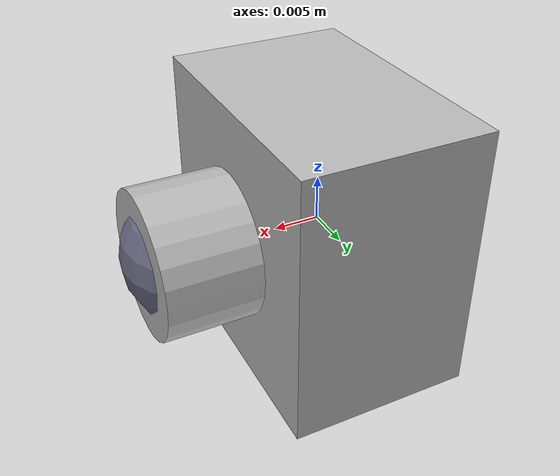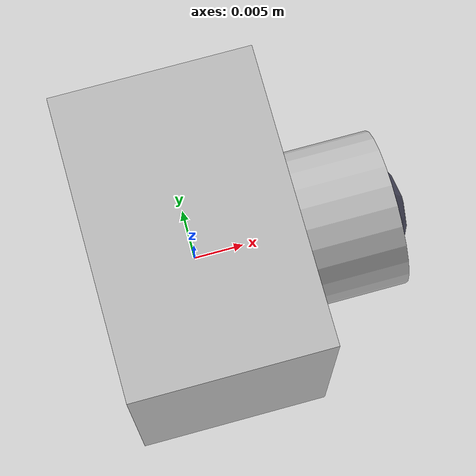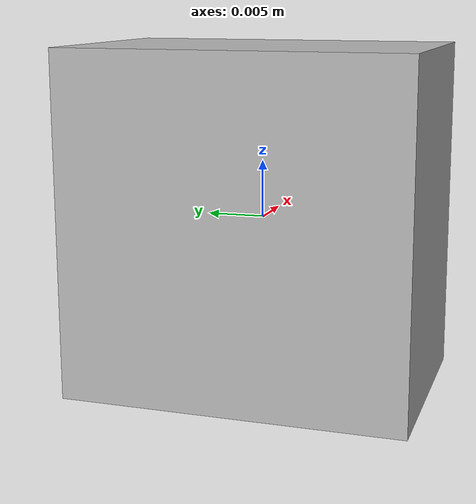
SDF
<?xml version="1.0" encoding="UTF-8"?>
<sdf version='1.9'>
  <model name='vtol_cam'>
    <pose>0 0 0 0 0 0</pose>
    <self_collide>false</self_collide>
    <static>false</static>
    <link name="camera_link">
      <inertial>
        <pose>0.03 0.03 0.03 0 0 0</pose>
        <mass>0.050</mass>
        <inertia>
          <ixx>0.00004</ixx>
          <ixy>0</ixy>
          <ixz>0</ixz>
          <iyy>0.00004</iyy>
          <iyz>0</iyz>
          <izz>0.00004</izz>
        </inertia>
      </inertial>
      <visual name="vtol_cam/visual/housing">
        <geometry>
          <box>
            <size>0.02 0.03 0.03</size>
          </box>
        </geometry>
      </visual>
      <visual name="vtol_cam/visual/lens">
        <pose>0.015 0 0 0 1.5707 0</pose>
        <geometry>
          <cylinder>
            <radius>0.008</radius>
            <length>0.01</length>
          </cylinder>
        </geometry>
      </visual>
      <visual name="vtol_cam/visual/lens_glass">
        <pose>0.014 0 0 0 0 0</pose>
        <geometry>
          <sphere>
            <radius>0.0079</radius>
          </sphere>
        </geometry>
        <material>
          <ambient>.4 .4 .5 .95</ambient>
          <diffuse>.4 .4 .5 .95</diffuse>
          <specular>1 1 1 1</specular>
          <emissive>0 0 0 1</emissive>
        </material>
      </visual>

      <sensor name="imager" type="camera">
        <pose>0 0 0 0 0 0</pose>
        <camera>
          <horizontal_fov>1.74</horizontal_fov>
          <image>
            <width>1280</width>
            <height>960</height>
          </image>
          <clip>
            <near>0.1</near>
            <far>3000</far>
          </clip>
        </camera>
        <always_on>1</always_on>
        <update_rate>15</update_rate>
        <visualize>true</visualize>
      </sensor>
      <gravity>true</gravity>
      <velocity_decay/>
    </link>
  </model>
</sdf>
